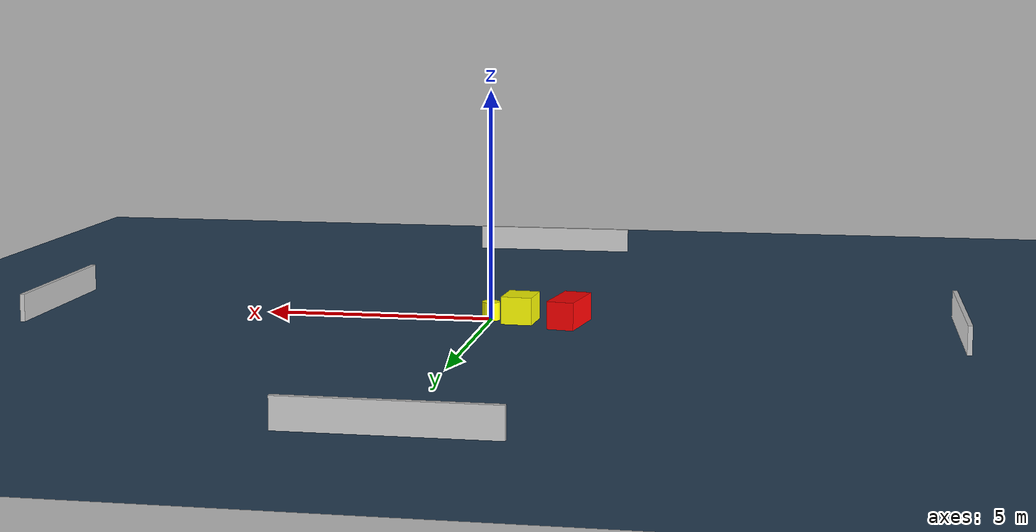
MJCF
<?xml version="1.0" ?>
<mujoco model="generated_environment">
  <option timestep="0.01" integrator="RK4" cone="elliptic"/>
  <default>
    <geom density="1"/>
  </default>
  <asset>
    <texture builtin="gradient" height="3072" name="skybox" rgb1="0.3 0.5 0.7" rgb2="0 0 0" type="skybox" width="512"/>
    <texture builtin="checker" height="300" name="groundplane" rgb1="0.2 0.3 0.4" rgb2="0.1 0.2 0.3" type="2d" width="300"/>
    <material name="groundplane" reflectance="0.2" texrepeat="5 5" texture="groundplane"/>
  </asset>
  <worldbody>
    <light dir="0 0 -1" directional="true" pos="0 0 1.5"/>
    <geom condim="3" friction="0.5 0.005 0.001" material="groundplane" name="floor" pos="0 0 0" size="0 0 0.05" type="plane"/>
    <body name="walls">
      <geom name="wall_1" condim="4" pos="-10.0 0.0 0.3" rgba="0.800000011920929 0.800000011920929 0.800000011920929 1.0" size="0.05 2.0 0.3" type="box"/>
      <geom name="wall_2" condim="4" pos="10.0 0.0 0.3" rgba="0.800000011920929 0.800000011920929 0.800000011920929 1.0" size="0.05 2.0 0.3" type="box"/>
      <geom name="wall_3" condim="4" pos="0.0 -10.0 0.3" rgba="0.800000011920929 0.800000011920929 0.800000011920929 1.0" size="2.0 0.05 0.3" type="box"/>
      <geom name="wall_4" condim="4" pos="0.0 10.0 0.3" rgba="0.800000011920929 0.800000011920929 0.800000011920929 1.0" size="2.0 0.05 0.3" type="box"/>
    </body>
    <body name="robot">
      <joint name="joint_x" type="slide" pos="0 0 0" axis="1 0 0"/>
      <joint name="joint_y" type="slide" pos="0 0 0" axis="0 1 0"/>
      <geom name="robot" type="cylinder" pos="0.0 0.0 0.2" size="0.2 0.2 0.0" mass="5.0" friction="1.0 0.005 0.0001" condim="4" rgba="1.0 1.0 0.0 1.0"/>
    </body>
    <body name="obstacle_1_movable">
      <geom name="obstacle_1_movable" condim="4" pos="-0.6657263872106312 0.08846805763716141 0.3" euler="0 0 176.07727405854365" friction="0.0 0.005 0.001" rgba="1.0 1.0 0.0 1.0" size="0.33483915104096473 0.42341223058202093 0.3" type="box" mass="0.1"/>
      <joint type="free"/>
    </body>
    <body name="obstacle_2_static">
      <geom name="obstacle_2_static" condim="4" pos="-1.7497933859796633 0.2449729033009356 0.3" euler="0 0 80.4107893078191" friction="0.0 0.005 0.001" rgba="1.0 0.0 0.0 1.0" size="0.673864840985333 0.2933082536226659 0.3" type="box"/>
    </body>
  </worldbody>
  <actuator>
    <motor name="actuator_x" joint="joint_x" gear="1" ctrlrange="-1 1"/>
    <motor name="actuator_y" joint="joint_y" gear="1" ctrlrange="-1 1"/>
  </actuator>
</mujoco>
